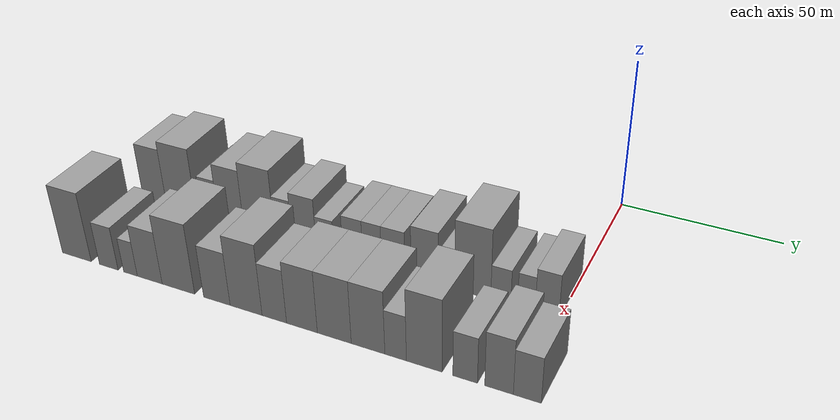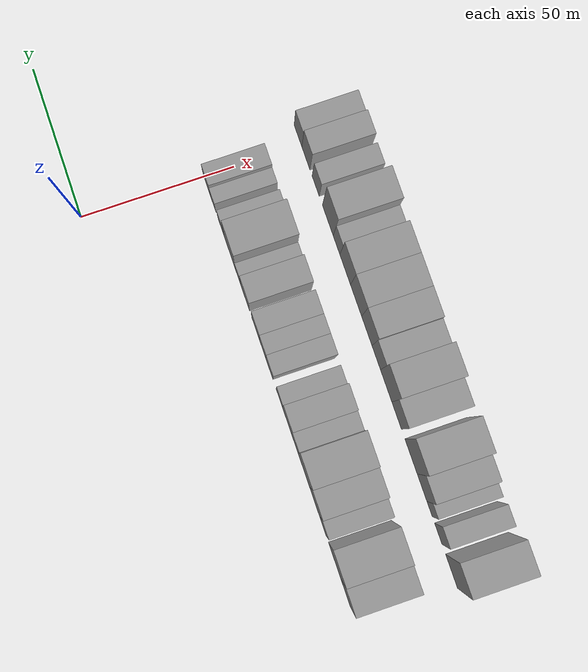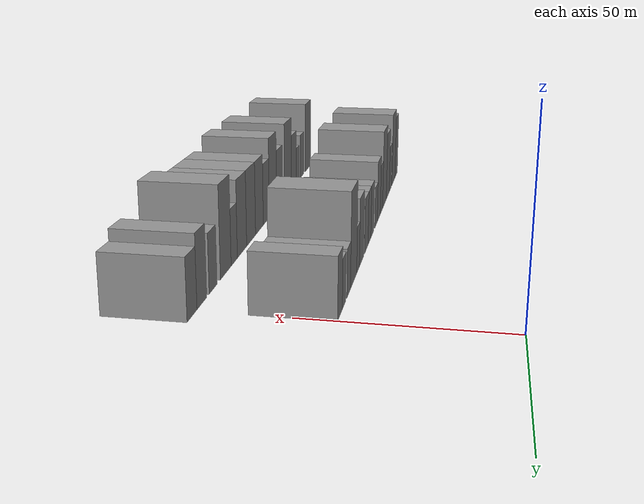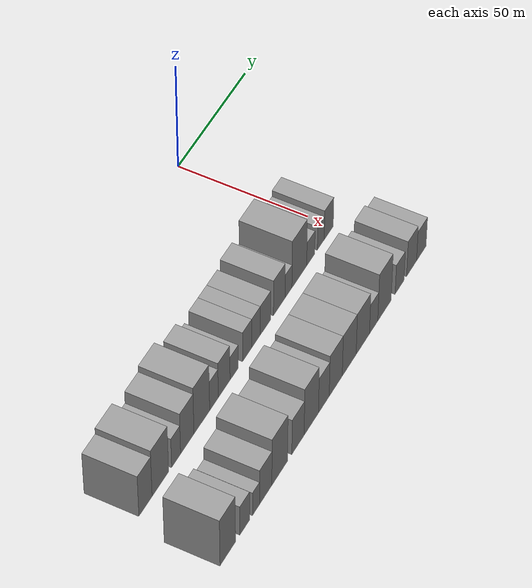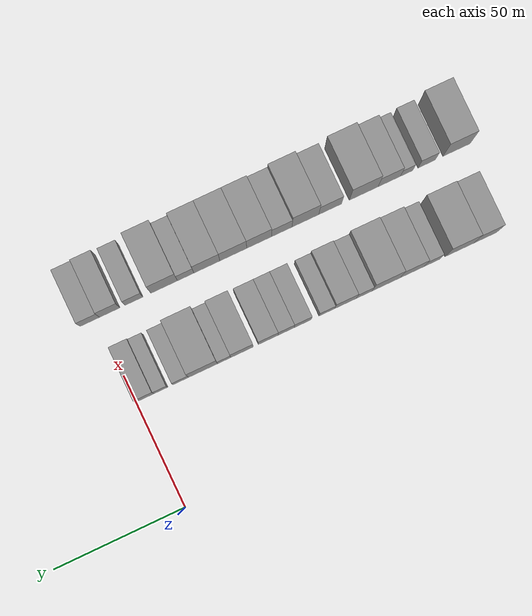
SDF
<sdf version="1.6">
 <world name="default">
  <model name="building_17">
   <static>1</static>
   <pose>50.0000 -133.6724 0 0.000000 0.000000 0.000000</pose>
   <link name="link">
    <pose>0 0 10.50 0 0 0</pose>
    <collision name="collision"><geometry><box><size>20.0000 8.8204 21.0000</size></box></geometry></collision>
    <visual name="visual">
     <cast_shadows>0</cast_shadows>
     <geometry><box><size>20.0000 8.8204 21.0000</size></box></geometry>
     <material>
      <script>
       <uri>model://grey_wall/materials/scripts</uri>
       <uri>model://grey_wall/materials/textures</uri>
       <name>vrc/grey_wall</name>
      </script>
     </material>
    </visual>
   </link>
  </model>
  <model name="building_18">
   <static>1</static>
   <pose>50.0000 -123.7028 0 0.000000 0.000000 0.000000</pose>
   <link name="link">
    <pose>0 0 12.00 0 0 0</pose>
    <collision name="collision"><geometry><box><size>20.0000 11.1187 24.0000</size></box></geometry></collision>
    <visual name="visual">
     <cast_shadows>0</cast_shadows>
     <geometry><box><size>20.0000 11.1187 24.0000</size></box></geometry>
     <material>
      <script>
       <uri>model://grey_wall/materials/scripts</uri>
       <uri>model://grey_wall/materials/textures</uri>
       <name>vrc/grey_wall</name>
      </script>
     </material>
    </visual>
   </link>
  </model>
  <model name="building_19">
   <static>1</static>
   <pose>50.0000 -113.0769 0 0.000000 0.000000 0.000000</pose>
   <link name="link">
    <pose>0 0 7.50 0 0 0</pose>
    <collision name="collision"><geometry><box><size>20.0000 6.1330 15.0000</size></box></geometry></collision>
    <visual name="visual">
     <cast_shadows>0</cast_shadows>
     <geometry><box><size>20.0000 6.1330 15.0000</size></box></geometry>
     <material>
      <script>
       <uri>model://grey_wall/materials/scripts</uri>
       <uri>model://grey_wall/materials/textures</uri>
       <name>vrc/grey_wall</name>
      </script>
     </material>
    </visual>
   </link>
  </model>
  <model name="building_20">
   <static>1</static>
   <pose>50.0000 -105.4436 0 0.000000 0.000000 0.000000</pose>
   <link name="link">
    <pose>0 0 10.50 0 0 0</pose>
    <collision name="collision"><geometry><box><size>20.0000 9.1338 21.0000</size></box></geometry></collision>
    <visual name="visual">
     <cast_shadows>0</cast_shadows>
     <geometry><box><size>20.0000 9.1338 21.0000</size></box></geometry>
     <material>
      <script>
       <uri>model://grey_wall/materials/scripts</uri>
       <uri>model://grey_wall/materials/textures</uri>
       <name>vrc/grey_wall</name>
      </script>
     </material>
    </visual>
   </link>
  </model>
  <model name="building_21">
   <static>1</static>
   <pose>50.0000 -95.4409 0 0.000000 0.000000 0.000000</pose>
   <link name="link">
    <pose>0 0 12.00 0 0 0</pose>
    <collision name="collision"><geometry><box><size>20.0000 10.8715 24.0000</size></box></geometry></collision>
    <visual name="visual">
     <cast_shadows>0</cast_shadows>
     <geometry><box><size>20.0000 10.8715 24.0000</size></box></geometry>
     <material>
      <script>
       <uri>model://grey_wall/materials/scripts</uri>
       <uri>model://grey_wall/materials/textures</uri>
       <name>vrc/grey_wall</name>
      </script>
     </material>
    </visual>
   </link>
  </model>
  <model name="building_22">
   <static>1</static>
   <pose>50.0000 -86.9923 0 0.000000 0.000000 0.000000</pose>
   <link name="link">
    <pose>0 0 7.50 0 0 0</pose>
    <collision name="collision"><geometry><box><size>20.0000 6.0256 15.0000</size></box></geometry></collision>
    <visual name="visual">
     <cast_shadows>0</cast_shadows>
     <geometry><box><size>20.0000 6.0256 15.0000</size></box></geometry>
     <material>
      <script>
       <uri>model://grey_wall/materials/scripts</uri>
       <uri>model://grey_wall/materials/textures</uri>
       <name>vrc/grey_wall</name>
      </script>
     </material>
    </visual>
   </link>
  </model>
  <model name="building_23">
   <static>1</static>
   <pose>50.0000 -79.8421 0 0.000000 0.000000 0.000000</pose>
   <link name="link">
    <pose>0 0 9.00 0 0 0</pose>
    <collision name="collision"><geometry><box><size>20.0000 8.2749 18.0000</size></box></geometry></collision>
    <visual name="visual">
     <cast_shadows>0</cast_shadows>
     <geometry><box><size>20.0000 8.2749 18.0000</size></box></geometry>
     <material>
      <script>
       <uri>model://grey_wall/materials/scripts</uri>
       <uri>model://grey_wall/materials/textures</uri>
       <name>vrc/grey_wall</name>
      </script>
     </material>
    </visual>
   </link>
  </model>
  <model name="building_24">
   <static>1</static>
   <pose>50.0000 -72.7355 0 0.000000 0.000000 0.000000</pose>
   <link name="link">
    <pose>0 0 6.00 0 0 0</pose>
    <collision name="collision"><geometry><box><size>20.0000 5.9383 12.0000</size></box></geometry></collision>
    <visual name="visual">
     <cast_shadows>0</cast_shadows>
     <geometry><box><size>20.0000 5.9383 12.0000</size></box></geometry>
     <material>
      <script>
       <uri>model://grey_wall/materials/scripts</uri>
       <uri>model://grey_wall/materials/textures</uri>
       <name>vrc/grey_wall</name>
      </script>
     </material>
    </visual>
   </link>
  </model>
  <model name="building_25">
   <static>1</static>
   <pose>50.0000 -63.4808 0 0.000000 0.000000 0.000000</pose>
   <link name="link">
    <pose>0 0 7.50 0 0 0</pose>
    <collision name="collision"><geometry><box><size>20.0000 6.5712 15.0000</size></box></geometry></collision>
    <visual name="visual">
     <cast_shadows>0</cast_shadows>
     <geometry><box><size>20.0000 6.5712 15.0000</size></box></geometry>
     <material>
      <script>
       <uri>model://grey_wall/materials/scripts</uri>
       <uri>model://grey_wall/materials/textures</uri>
       <name>vrc/grey_wall</name>
      </script>
     </material>
    </visual>
   </link>
  </model>
  <model name="building_26">
   <static>1</static>
   <pose>50.0000 -57.1335 0 0.000000 0.000000 0.000000</pose>
   <link name="link">
    <pose>0 0 7.50 0 0 0</pose>
    <collision name="collision"><geometry><box><size>20.0000 6.1234 15.0000</size></box></geometry></collision>
    <visual name="visual">
     <cast_shadows>0</cast_shadows>
     <geometry><box><size>20.0000 6.1234 15.0000</size></box></geometry>
     <material>
      <script>
       <uri>model://grey_wall/materials/scripts</uri>
       <uri>model://grey_wall/materials/textures</uri>
       <name>vrc/grey_wall</name>
      </script>
     </material>
    </visual>
   </link>
  </model>
  <model name="building_27">
   <static>1</static>
   <pose>50.0000 -50.3300 0 0.000000 0.000000 0.000000</pose>
   <link name="link">
    <pose>0 0 7.50 0 0 0</pose>
    <collision name="collision"><geometry><box><size>20.0000 7.4836 15.0000</size></box></geometry></collision>
    <visual name="visual">
     <cast_shadows>0</cast_shadows>
     <geometry><box><size>20.0000 7.4836 15.0000</size></box></geometry>
     <material>
      <script>
       <uri>model://grey_wall/materials/scripts</uri>
       <uri>model://grey_wall/materials/textures</uri>
       <name>vrc/grey_wall</name>
      </script>
     </material>
    </visual>
   </link>
  </model>
  <model name="building_28">
   <static>1</static>
   <pose>50.0000 -40.3226 0 0.000000 0.000000 0.000000</pose>
   <link name="link">
    <pose>0 0 9.00 0 0 0</pose>
    <collision name="collision"><geometry><box><size>20.0000 8.5311 18.0000</size></box></geometry></collision>
    <visual name="visual">
     <cast_shadows>0</cast_shadows>
     <geometry><box><size>20.0000 8.5311 18.0000</size></box></geometry>
     <material>
      <script>
       <uri>model://grey_wall/materials/scripts</uri>
       <uri>model://grey_wall/materials/textures</uri>
       <name>vrc/grey_wall</name>
      </script>
     </material>
    </visual>
   </link>
  </model>
  <model name="building_29">
   <static>1</static>
   <pose>50.0000 -33.5444 0 0.000000 0.000000 0.000000</pose>
   <link name="link">
    <pose>0 0 6.00 0 0 0</pose>
    <collision name="collision"><geometry><box><size>20.0000 5.0253 12.0000</size></box></geometry></collision>
    <visual name="visual">
     <cast_shadows>0</cast_shadows>
     <geometry><box><size>20.0000 5.0253 12.0000</size></box></geometry>
     <material>
      <script>
       <uri>model://grey_wall/materials/scripts</uri>
       <uri>model://grey_wall/materials/textures</uri>
       <name>vrc/grey_wall</name>
      </script>
     </material>
    </visual>
   </link>
  </model>
  <model name="building_30">
   <static>1</static>
   <pose>50.0000 -25.5399 0 0.000000 0.000000 0.000000</pose>
   <link name="link">
    <pose>0 0 12.00 0 0 0</pose>
    <collision name="collision"><geometry><box><size>20.0000 10.9839 24.0000</size></box></geometry></collision>
    <visual name="visual">
     <cast_shadows>0</cast_shadows>
     <geometry><box><size>20.0000 10.9839 24.0000</size></box></geometry>
     <material>
      <script>
       <uri>model://grey_wall/materials/scripts</uri>
       <uri>model://grey_wall/materials/textures</uri>
       <name>vrc/grey_wall</name>
      </script>
     </material>
    </visual>
   </link>
  </model>
  <model name="building_31">
   <static>1</static>
   <pose>50.0000 -17.0664 0 0.000000 0.000000 0.000000</pose>
   <link name="link">
    <pose>0 0 6.00 0 0 0</pose>
    <collision name="collision"><geometry><box><size>20.0000 5.9630 12.0000</size></box></geometry></collision>
    <visual name="visual">
     <cast_shadows>0</cast_shadows>
     <geometry><box><size>20.0000 5.9630 12.0000</size></box></geometry>
     <material>
      <script>
       <uri>model://grey_wall/materials/scripts</uri>
       <uri>model://grey_wall/materials/textures</uri>
       <name>vrc/grey_wall</name>
      </script>
     </material>
    </visual>
   </link>
  </model>
  <model name="building_32">
   <static>1</static>
   <pose>50.0000 -9.5137 0 0.000000 0.000000 0.000000</pose>
   <link name="link">
    <pose>0 0 6.00 0 0 0</pose>
    <collision name="collision"><geometry><box><size>20.0000 5.1426 12.0000</size></box></geometry></collision>
    <visual name="visual">
     <cast_shadows>0</cast_shadows>
     <geometry><box><size>20.0000 5.1426 12.0000</size></box></geometry>
     <material>
      <script>
       <uri>model://grey_wall/materials/scripts</uri>
       <uri>model://grey_wall/materials/textures</uri>
       <name>vrc/grey_wall</name>
      </script>
     </material>
    </visual>
   </link>
  </model>
  <model name="building_33">
   <static>1</static>
   <pose>50.0000 -3.4888 0 0.000000 0.000000 0.000000</pose>
   <link name="link">
    <pose>0 0 7.50 0 0 0</pose>
    <collision name="collision"><geometry><box><size>20.0000 6.9071 15.0000</size></box></geometry></collision>
    <visual name="visual">
     <cast_shadows>0</cast_shadows>
     <geometry><box><size>20.0000 6.9071 15.0000</size></box></geometry>
     <material>
      <script>
       <uri>model://grey_wall/materials/scripts</uri>
       <uri>model://grey_wall/materials/textures</uri>
       <name>vrc/grey_wall</name>
      </script>
     </material>
    </visual>
   </link>
  </model>
  <model name="building_82">
   <static>1</static>
   <pose>82.0000 -137.9903 0 0.000000 0.000000 0.000000</pose>
   <link name="link">
    <pose>0 0 12.00 0 0 0</pose>
    <collision name="collision"><geometry><box><size>20.0000 10.5361 24.0000</size></box></geometry></collision>
    <visual name="visual">
     <cast_shadows>0</cast_shadows>
     <geometry><box><size>20.0000 10.5361 24.0000</size></box></geometry>
     <material>
      <script>
       <uri>model://grey_wall/materials/scripts</uri>
       <uri>model://grey_wall/materials/textures</uri>
       <name>vrc/grey_wall</name>
      </script>
     </material>
    </visual>
   </link>
  </model>
  <model name="building_83">
   <static>1</static>
   <pose>82.0000 -126.3997 0 0.000000 0.000000 0.000000</pose>
   <link name="link">
    <pose>0 0 7.50 0 0 0</pose>
    <collision name="collision"><geometry><box><size>20.0000 6.6450 15.0000</size></box></geometry></collision>
    <visual name="visual">
     <cast_shadows>0</cast_shadows>
     <geometry><box><size>20.0000 6.6450 15.0000</size></box></geometry>
     <material>
      <script>
       <uri>model://grey_wall/materials/scripts</uri>
       <uri>model://grey_wall/materials/textures</uri>
       <name>vrc/grey_wall</name>
      </script>
     </material>
    </visual>
   </link>
  </model>
  <model name="building_84">
   <static>1</static>
   <pose>82.0000 -118.6715 0 0.000000 0.000000 0.000000</pose>
   <link name="link">
    <pose>0 0 6.00 0 0 0</pose>
    <collision name="collision"><geometry><box><size>20.0000 4.8114 12.0000</size></box></geometry></collision>
    <visual name="visual">
     <cast_shadows>0</cast_shadows>
     <geometry><box><size>20.0000 4.8114 12.0000</size></box></geometry>
     <material>
      <script>
       <uri>model://grey_wall/materials/scripts</uri>
       <uri>model://grey_wall/materials/textures</uri>
       <name>vrc/grey_wall</name>
      </script>
     </material>
    </visual>
   </link>
  </model>
  <model name="building_85">
   <static>1</static>
   <pose>82.0000 -111.9517 0 0.000000 0.000000 0.000000</pose>
   <link name="link">
    <pose>0 0 9.00 0 0 0</pose>
    <collision name="collision"><geometry><box><size>20.0000 8.6282 18.0000</size></box></geometry></collision>
    <visual name="visual">
     <cast_shadows>0</cast_shadows>
     <geometry><box><size>20.0000 8.6282 18.0000</size></box></geometry>
     <material>
      <script>
       <uri>model://grey_wall/materials/scripts</uri>
       <uri>model://grey_wall/materials/textures</uri>
       <name>vrc/grey_wall</name>
      </script>
     </material>
    </visual>
   </link>
  </model>
  <model name="building_86">
   <static>1</static>
   <pose>82.0000 -102.1115 0 0.000000 0.000000 0.000000</pose>
   <link name="link">
    <pose>0 0 12.00 0 0 0</pose>
    <collision name="collision"><geometry><box><size>20.0000 11.0522 24.0000</size></box></geometry></collision>
    <visual name="visual">
     <cast_shadows>0</cast_shadows>
     <geometry><box><size>20.0000 11.0522 24.0000</size></box></geometry>
     <material>
      <script>
       <uri>model://grey_wall/materials/scripts</uri>
       <uri>model://grey_wall/materials/textures</uri>
       <name>vrc/grey_wall</name>
      </script>
     </material>
    </visual>
   </link>
  </model>
  <model name="building_87">
   <static>1</static>
   <pose>82.0000 -89.2101 0 0.000000 0.000000 0.000000</pose>
   <link name="link">
    <pose>0 0 9.00 0 0 0</pose>
    <collision name="collision"><geometry><box><size>20.0000 8.7506 18.0000</size></box></geometry></collision>
    <visual name="visual">
     <cast_shadows>0</cast_shadows>
     <geometry><box><size>20.0000 8.7506 18.0000</size></box></geometry>
     <material>
      <script>
       <uri>model://grey_wall/materials/scripts</uri>
       <uri>model://grey_wall/materials/textures</uri>
       <name>vrc/grey_wall</name>
      </script>
     </material>
    </visual>
   </link>
  </model>
  <model name="building_88">
   <static>1</static>
   <pose>82.0000 -79.6699 0 0.000000 0.000000 0.000000</pose>
   <link name="link">
    <pose>0 0 12.00 0 0 0</pose>
    <collision name="collision"><geometry><box><size>20.0000 10.3298 24.0000</size></box></geometry></collision>
    <visual name="visual">
     <cast_shadows>0</cast_shadows>
     <geometry><box><size>20.0000 10.3298 24.0000</size></box></geometry>
     <material>
      <script>
       <uri>model://grey_wall/materials/scripts</uri>
       <uri>model://grey_wall/materials/textures</uri>
       <name>vrc/grey_wall</name>
      </script>
     </material>
    </visual>
   </link>
  </model>
  <model name="building_89">
   <static>1</static>
   <pose>82.0000 -70.6228 0 0.000000 0.000000 0.000000</pose>
   <link name="link">
    <pose>0 0 9.00 0 0 0</pose>
    <collision name="collision"><geometry><box><size>20.0000 7.7644 18.0000</size></box></geometry></collision>
    <visual name="visual">
     <cast_shadows>0</cast_shadows>
     <geometry><box><size>20.0000 7.7644 18.0000</size></box></geometry>
     <material>
      <script>
       <uri>model://grey_wall/materials/scripts</uri>
       <uri>model://grey_wall/materials/textures</uri>
       <name>vrc/grey_wall</name>
      </script>
     </material>
    </visual>
   </link>
  </model>
  <model name="building_90">
   <static>1</static>
   <pose>82.0000 -61.9629 0 0.000000 0.000000 0.000000</pose>
   <link name="link">
    <pose>0 0 10.50 0 0 0</pose>
    <collision name="collision"><geometry><box><size>20.0000 9.5555 21.0000</size></box></geometry></collision>
    <visual name="visual">
     <cast_shadows>0</cast_shadows>
     <geometry><box><size>20.0000 9.5555 21.0000</size></box></geometry>
     <material>
      <script>
       <uri>model://grey_wall/materials/scripts</uri>
       <uri>model://grey_wall/materials/textures</uri>
       <name>vrc/grey_wall</name>
      </script>
     </material>
    </visual>
   </link>
  </model>
  <model name="building_91">
   <static>1</static>
   <pose>82.0000 -52.0444 0 0.000000 0.000000 0.000000</pose>
   <link name="link">
    <pose>0 0 10.50 0 0 0</pose>
    <collision name="collision"><geometry><box><size>20.0000 10.2815 21.0000</size></box></geometry></collision>
    <visual name="visual">
     <cast_shadows>0</cast_shadows>
     <geometry><box><size>20.0000 10.2815 21.0000</size></box></geometry>
     <material>
      <script>
       <uri>model://grey_wall/materials/scripts</uri>
       <uri>model://grey_wall/materials/textures</uri>
       <name>vrc/grey_wall</name>
      </script>
     </material>
    </visual>
   </link>
  </model>
  <model name="building_92">
   <static>1</static>
   <pose>82.0000 -41.9251 0 0.000000 0.000000 0.000000</pose>
   <link name="link">
    <pose>0 0 10.50 0 0 0</pose>
    <collision name="collision"><geometry><box><size>20.0000 9.9572 21.0000</size></box></geometry></collision>
    <visual name="visual">
     <cast_shadows>0</cast_shadows>
     <geometry><box><size>20.0000 9.9572 21.0000</size></box></geometry>
     <material>
      <script>
       <uri>model://grey_wall/materials/scripts</uri>
       <uri>model://grey_wall/materials/textures</uri>
       <name>vrc/grey_wall</name>
      </script>
     </material>
    </visual>
   </link>
  </model>
  <model name="building_93">
   <static>1</static>
   <pose>82.0000 -33.8175 0 0.000000 0.000000 0.000000</pose>
   <link name="link">
    <pose>0 0 7.50 0 0 0</pose>
    <collision name="collision"><geometry><box><size>20.0000 6.2579 15.0000</size></box></geometry></collision>
    <visual name="visual">
     <cast_shadows>0</cast_shadows>
     <geometry><box><size>20.0000 6.2579 15.0000</size></box></geometry>
     <material>
      <script>
       <uri>model://grey_wall/materials/scripts</uri>
       <uri>model://grey_wall/materials/textures</uri>
       <name>vrc/grey_wall</name>
      </script>
     </material>
    </visual>
   </link>
  </model>
  <model name="building_94">
   <static>1</static>
   <pose>82.0000 -25.5947 0 0.000000 0.000000 0.000000</pose>
   <link name="link">
    <pose>0 0 12.00 0 0 0</pose>
    <collision name="collision"><geometry><box><size>20.0000 10.1877 24.0000</size></box></geometry></collision>
    <visual name="visual">
     <cast_shadows>0</cast_shadows>
     <geometry><box><size>20.0000 10.1877 24.0000</size></box></geometry>
     <material>
      <script>
       <uri>model://grey_wall/materials/scripts</uri>
       <uri>model://grey_wall/materials/textures</uri>
       <name>vrc/grey_wall</name>
      </script>
     </material>
    </visual>
   </link>
  </model>
  <model name="building_95">
   <static>1</static>
   <pose>82.0000 -14.0971 0 0.000000 0.000000 0.000000</pose>
   <link name="link">
    <pose>0 0 7.50 0 0 0</pose>
    <collision name="collision"><geometry><box><size>20.0000 6.8077 15.0000</size></box></geometry></collision>
    <visual name="visual">
     <cast_shadows>0</cast_shadows>
     <geometry><box><size>20.0000 6.8077 15.0000</size></box></geometry>
     <material>
      <script>
       <uri>model://grey_wall/materials/scripts</uri>
       <uri>model://grey_wall/materials/textures</uri>
       <name>vrc/grey_wall</name>
      </script>
     </material>
    </visual>
   </link>
  </model>
  <model name="building_96">
   <static>1</static>
   <pose>82.0000 -4.8218 0 0.000000 0.000000 0.000000</pose>
   <link name="link">
    <pose>0 0 9.00 0 0 0</pose>
    <collision name="collision"><geometry><box><size>20.0000 7.7428 18.0000</size></box></geometry></collision>
    <visual name="visual">
     <cast_shadows>0</cast_shadows>
     <geometry><box><size>20.0000 7.7428 18.0000</size></box></geometry>
     <material>
      <script>
       <uri>model://grey_wall/materials/scripts</uri>
       <uri>model://grey_wall/materials/textures</uri>
       <name>vrc/grey_wall</name>
      </script>
     </material>
    </visual>
   </link>
  </model>
  <model name="building_97">
   <static>1</static>
   <pose>82.0000 2.7654 0 0.000000 0.000000 0.000000</pose>
   <link name="link">
    <pose>0 0 7.50 0 0 0</pose>
    <collision name="collision"><geometry><box><size>20.0000 7.4316 15.0000</size></box></geometry></collision>
    <visual name="visual">
     <cast_shadows>0</cast_shadows>
     <geometry><box><size>20.0000 7.4316 15.0000</size></box></geometry>
     <material>
      <script>
       <uri>model://grey_wall/materials/scripts</uri>
       <uri>model://grey_wall/materials/textures</uri>
       <name>vrc/grey_wall</name>
      </script>
     </material>
    </visual>
   </link>
  </model>
 </world>
</sdf>
